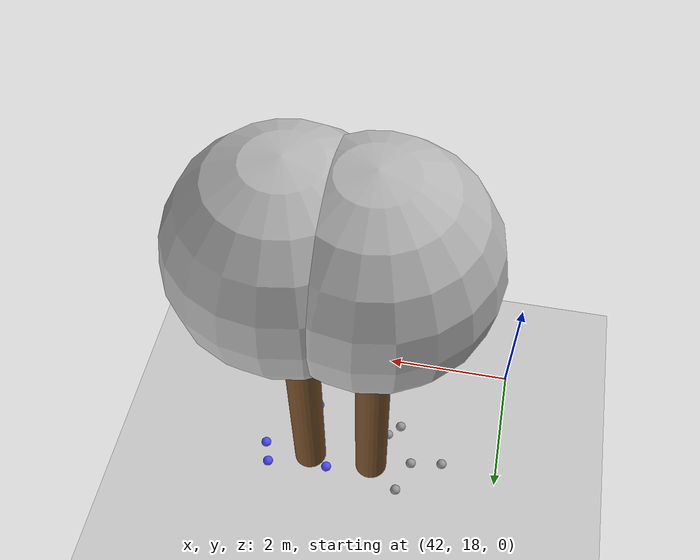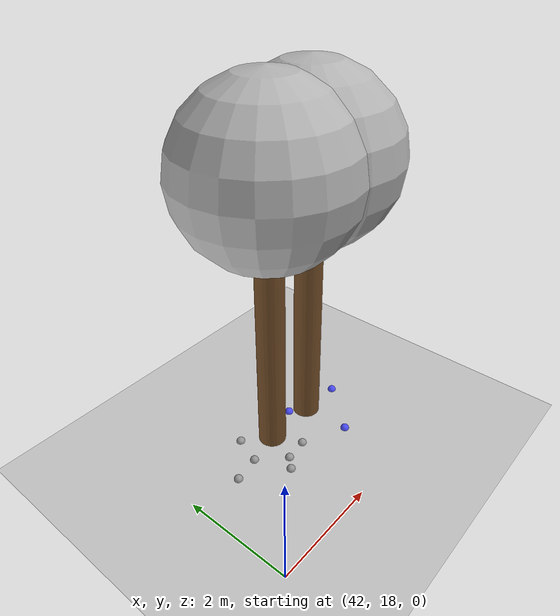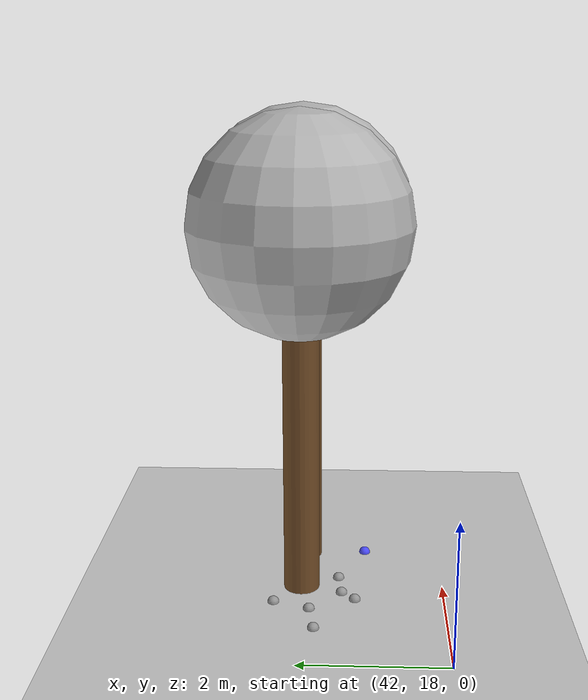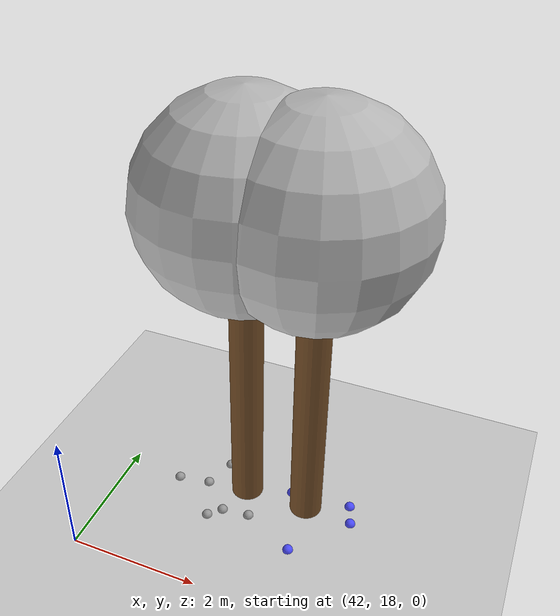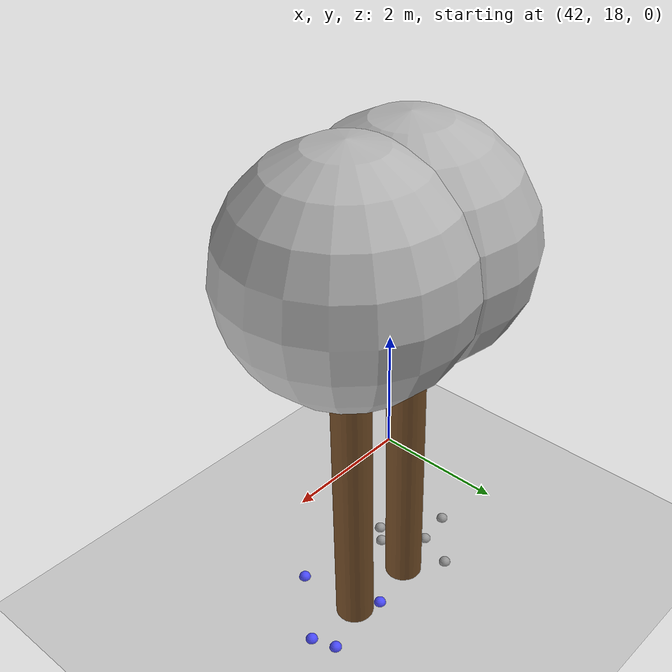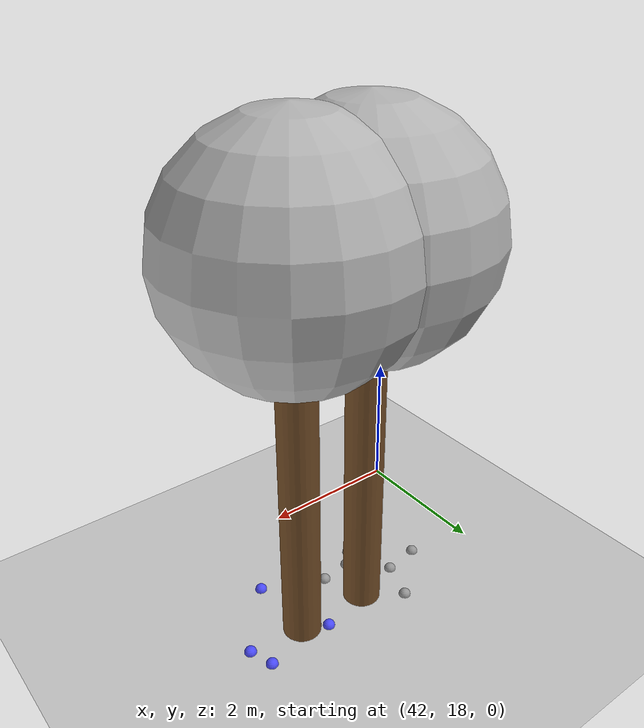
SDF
<sdf version="1.7">
 <world name="default">
  <model name="ground_plane">
   <static>1</static>
   <link name="link">
    <collision name="collision">
     <geometry><plane><normal>0 0 1</normal><size>100 100</size></plane></geometry>
     <surface>
      <contact><collide_bitmask>65535</collide_bitmask></contact>
      <friction><ode><mu>100</mu><mu2>50</mu2></ode></friction>
     </surface>
    </collision>
    <visual name="visual">
     <cast_shadows>0</cast_shadows>
     <geometry><plane><normal>0 0 1</normal><size>100 100</size></plane></geometry>
     <material>
      <script><uri>file://media/materials/scripts/gazebo.material</uri><name>Gazebo/Grey</name></script>
     </material>
    </visual>
   </link>
  </model>
  <model name="tree_simple_49">
   <static>1</static>
   <link name="link">
    <pose>0 0 0.1 0 -0 0</pose>
    <inertial>
     <mass>666</mass>
     <inertia>
      <ixx>0.0861167</ixx>
      <ixy>0</ixy>
      <ixz>0</ixz>
      <iyy>0.0861167</iyy>
      <iyz>0</iyz>
      <izz>0.0861167</izz>
     </inertia>
    </inertial>
    <collision name="collision_trunk">
     <pose>0 0 2 0 -0 0</pose>
     <geometry><cylinder><radius>0.25</radius><length>4</length></cylinder></geometry>
     <surface>
      <contact>
       <poissons_ratio>0.347</poissons_ratio>
       <elastic_modulus>8.8e+09</elastic_modulus>
       <ode><kp>100000</kp><kd>100</kd><max_vel>100</max_vel><min_depth>0.001</min_depth></ode>
      </contact>
      <friction>
       <torsional>
        <coefficient>1</coefficient>
        <use_patch_radius>0</use_patch_radius>
        <surface_radius>0.01</surface_radius>
       </torsional>
      </friction>
     </surface>
    </collision>
    <collision name="collision_treetop">
     <pose>0 0 5.2 0 -0 0</pose>
     <geometry><sphere><radius>1.5</radius></sphere></geometry>
     <surface>
      <contact>
       <poissons_ratio>0.347</poissons_ratio>
       <elastic_modulus>8.8e+09</elastic_modulus>
       <ode><kp>100000</kp><kd>100</kd><max_vel>100</max_vel><min_depth>0.001</min_depth></ode>
      </contact>
      <friction>
       <torsional>
        <coefficient>1</coefficient>
        <use_patch_radius>0</use_patch_radius>
        <surface_radius>0.01</surface_radius>
       </torsional>
      </friction>
     </surface>
    </collision>
    <visual name="trunk">
     <pose>0 0 2 0 -0 0</pose>
     <geometry><cylinder><radius>0.25</radius><length>4</length></cylinder></geometry>
     <material>
      <script>
       <uri>model://tree_simple/scripts</uri>
       <uri>model://tree_simple/materials/textures</uri>
       <name>TreeSimple/Trunk</name>
      </script>
     </material>
    </visual>
    <visual name="treetop">
     <pose>0 0 5.2 0 -0 0</pose>
     <geometry><sphere><radius>1.5</radius></sphere></geometry>
     <material>
      <script>
       <uri>model://tree_simple/scripts</uri>
       <uri>model://tree_simple/materials/textures</uri>
       <name>TreeSimple/Treetop</name>
      </script>
     </material>
    </visual>
   </link>
   <pose>44 20 -0.1 0 -0 0</pose>
  </model>
  <model name="tree_simple_50">
   <static>1</static>
   <link name="link">
    <pose>0 0 0.1 0 -0 0</pose>
    <inertial>
     <mass>666</mass>
     <inertia>
      <ixx>0.0861167</ixx>
      <ixy>0</ixy>
      <ixz>0</ixz>
      <iyy>0.0861167</iyy>
      <iyz>0</iyz>
      <izz>0.0861167</izz>
     </inertia>
    </inertial>
    <collision name="collision_trunk">
     <pose>0 0 2 0 -0 0</pose>
     <geometry><cylinder><radius>0.25</radius><length>4</length></cylinder></geometry>
     <surface>
      <contact>
       <poissons_ratio>0.347</poissons_ratio>
       <elastic_modulus>8.8e+09</elastic_modulus>
       <ode><kp>100000</kp><kd>100</kd><max_vel>100</max_vel><min_depth>0.001</min_depth></ode>
      </contact>
      <friction>
       <torsional>
        <coefficient>1</coefficient>
        <use_patch_radius>0</use_patch_radius>
        <surface_radius>0.01</surface_radius>
       </torsional>
      </friction>
     </surface>
    </collision>
    <collision name="collision_treetop">
     <pose>0 0 5.2 0 -0 0</pose>
     <geometry><sphere><radius>1.5</radius></sphere></geometry>
     <surface>
      <contact>
       <poissons_ratio>0.347</poissons_ratio>
       <elastic_modulus>8.8e+09</elastic_modulus>
       <ode><kp>100000</kp><kd>100</kd><max_vel>100</max_vel><min_depth>0.001</min_depth></ode>
      </contact>
      <friction>
       <torsional>
        <coefficient>1</coefficient>
        <use_patch_radius>0</use_patch_radius>
        <surface_radius>0.01</surface_radius>
       </torsional>
      </friction>
     </surface>
    </collision>
    <visual name="trunk">
     <pose>0 0 2 0 -0 0</pose>
     <geometry><cylinder><radius>0.25</radius><length>4</length></cylinder></geometry>
     <material>
      <script>
       <uri>model://tree_simple/scripts</uri>
       <uri>model://tree_simple/materials/textures</uri>
       <name>TreeSimple/Trunk</name>
      </script>
     </material>
    </visual>
    <visual name="treetop">
     <pose>0 0 5.2 0 -0 0</pose>
     <geometry><sphere><radius>1.5</radius></sphere></geometry>
     <material>
      <script>
       <uri>model://tree_simple/scripts</uri>
       <uri>model://tree_simple/materials/textures</uri>
       <name>TreeSimple/Treetop</name>
      </script>
     </material>
    </visual>
   </link>
   <pose>45 20 -0.1 0 -0 0</pose>
  </model>
  <model name="seed_black_34">
   <link name="link">
    <inertial>
     <mass>1</mass>
     <inertia><ixx>0.1</ixx><ixy>0</ixy><ixz>0</ixz><iyy>0.1</iyy><iyz>0</iyz><izz>0.1</izz></inertia>
    </inertial>
    <visual name="visual">
     <geometry><sphere><radius>0.08</radius></sphere></geometry>
     <material>
      <script><name>Gazebo/Grey</name><uri>file://media/materials/scripts/gazebo.material</uri></script>
      <shader type="pixel"><normal_map>__default__</normal_map></shader>
      <ambient>0 0 0 1</ambient>
      <diffuse>0.7 0.7 0.7 1</diffuse>
      <specular>0.01 0.01 0.01 1</specular>
      <emissive>0 0 0 1</emissive>
     </material>
    </visual>
    <collision name="collision">
     <geometry><sphere><radius>0.0005</radius></sphere></geometry>
     <surface>
      <friction>
       <ode><mu>1</mu><mu2>1</mu2><fdir1>0 0 0</fdir1><slip1>0</slip1><slip2>0</slip2></ode>
       <torsional>
        <coefficient>1</coefficient>
        <patch_radius>0</patch_radius>
        <surface_radius>0</surface_radius>
        <use_patch_radius>1</use_patch_radius>
        <ode><slip>0</slip></ode>
       </torsional>
      </friction>
      <bounce><restitution_coefficient>0</restitution_coefficient><threshold>1e+06</threshold></bounce>
      <contact>
       <collide_without_contact>0</collide_without_contact>
       <collide_without_contact_bitmask>1</collide_without_contact_bitmask>
       <collide_bitmask>1</collide_bitmask>
       <ode>
        <soft_cfm>0</soft_cfm>
        <soft_erp>0.2</soft_erp>
        <kp>1e+13</kp>
        <kd>1</kd>
        <max_vel>0.01</max_vel>
        <min_depth>0</min_depth>
       </ode>
       <bullet>
        <split_impulse>1</split_impulse>
        <split_impulse_penetration_threshold>-0.01</split_impulse_penetration_threshold>
        <soft_cfm>0</soft_cfm>
        <soft_erp>0.2</soft_erp>
        <kp>1e+13</kp>
        <kd>1</kd>
       </bullet>
      </contact>
     </surface>
    </collision>
   </link>
   <static>0</static>
   <pose>43.5371 20.3753 0.0005 0 -0 0</pose>
  </model>
  <model name="seed_black_35">
   <link name="link">
    <inertial>
     <mass>1</mass>
     <inertia><ixx>0.1</ixx><ixy>0</ixy><ixz>0</ixz><iyy>0.1</iyy><iyz>0</iyz><izz>0.1</izz></inertia>
    </inertial>
    <visual name="visual">
     <geometry><sphere><radius>0.08</radius></sphere></geometry>
     <material>
      <script><name>Gazebo/Grey</name><uri>file://media/materials/scripts/gazebo.material</uri></script>
      <shader type="pixel"><normal_map>__default__</normal_map></shader>
      <ambient>0 0 0 1</ambient>
      <diffuse>0.7 0.7 0.7 1</diffuse>
      <specular>0.01 0.01 0.01 1</specular>
      <emissive>0 0 0 1</emissive>
     </material>
    </visual>
    <collision name="collision">
     <geometry><sphere><radius>0.0005</radius></sphere></geometry>
     <surface>
      <friction>
       <ode><mu>1</mu><mu2>1</mu2><fdir1>0 0 0</fdir1><slip1>0</slip1><slip2>0</slip2></ode>
       <torsional>
        <coefficient>1</coefficient>
        <patch_radius>0</patch_radius>
        <surface_radius>0</surface_radius>
        <use_patch_radius>1</use_patch_radius>
        <ode><slip>0</slip></ode>
       </torsional>
      </friction>
      <bounce><restitution_coefficient>0</restitution_coefficient><threshold>1e+06</threshold></bounce>
      <contact>
       <collide_without_contact>0</collide_without_contact>
       <collide_without_contact_bitmask>1</collide_without_contact_bitmask>
       <collide_bitmask>1</collide_bitmask>
       <ode>
        <soft_cfm>0</soft_cfm>
        <soft_erp>0.2</soft_erp>
        <kp>1e+13</kp>
        <kd>1</kd>
        <max_vel>0.01</max_vel>
        <min_depth>0</min_depth>
       </ode>
       <bullet>
        <split_impulse>1</split_impulse>
        <split_impulse_penetration_threshold>-0.01</split_impulse_penetration_threshold>
        <soft_cfm>0</soft_cfm>
        <soft_erp>0.2</soft_erp>
        <kp>1e+13</kp>
        <kd>1</kd>
       </bullet>
      </contact>
     </surface>
    </collision>
   </link>
   <static>0</static>
   <pose>43.3649 19.8737 0.0005 0 -0 0</pose>
  </model>
  <model name="seed_black_36">
   <link name="link">
    <inertial>
     <mass>1</mass>
     <inertia><ixx>0.1</ixx><ixy>0</ixy><ixz>0</ixz><iyy>0.1</iyy><iyz>0</iyz><izz>0.1</izz></inertia>
    </inertial>
    <visual name="visual">
     <geometry><sphere><radius>0.08</radius></sphere></geometry>
     <material>
      <script><name>Gazebo/Grey</name><uri>file://media/materials/scripts/gazebo.material</uri></script>
      <shader type="pixel"><normal_map>__default__</normal_map></shader>
      <ambient>0 0 0 1</ambient>
      <diffuse>0.7 0.7 0.7 1</diffuse>
      <specular>0.01 0.01 0.01 1</specular>
      <emissive>0 0 0 1</emissive>
     </material>
    </visual>
    <collision name="collision">
     <geometry><sphere><radius>0.0005</radius></sphere></geometry>
     <surface>
      <friction>
       <ode><mu>1</mu><mu2>1</mu2><fdir1>0 0 0</fdir1><slip1>0</slip1><slip2>0</slip2></ode>
       <torsional>
        <coefficient>1</coefficient>
        <patch_radius>0</patch_radius>
        <surface_radius>0</surface_radius>
        <use_patch_radius>1</use_patch_radius>
        <ode><slip>0</slip></ode>
       </torsional>
      </friction>
      <bounce><restitution_coefficient>0</restitution_coefficient><threshold>1e+06</threshold></bounce>
      <contact>
       <collide_without_contact>0</collide_without_contact>
       <collide_without_contact_bitmask>1</collide_without_contact_bitmask>
       <collide_bitmask>1</collide_bitmask>
       <ode>
        <soft_cfm>0</soft_cfm>
        <soft_erp>0.2</soft_erp>
        <kp>1e+13</kp>
        <kd>1</kd>
        <max_vel>0.01</max_vel>
        <min_depth>0</min_depth>
       </ode>
       <bullet>
        <split_impulse>1</split_impulse>
        <split_impulse_penetration_threshold>-0.01</split_impulse_penetration_threshold>
        <soft_cfm>0</soft_cfm>
        <soft_erp>0.2</soft_erp>
        <kp>1e+13</kp>
        <kd>1</kd>
       </bullet>
      </contact>
     </surface>
    </collision>
   </link>
   <static>0</static>
   <pose>43.8115 19.4305 0.0005 0 -0 0</pose>
  </model>
  <model name="seed_black_37">
   <link name="link">
    <inertial>
     <mass>1</mass>
     <inertia><ixx>0.1</ixx><ixy>0</ixy><ixz>0</ixz><iyy>0.1</iyy><iyz>0</iyz><izz>0.1</izz></inertia>
    </inertial>
    <visual name="visual">
     <geometry><sphere><radius>0.08</radius></sphere></geometry>
     <material>
      <script><name>Gazebo/Grey</name><uri>file://media/materials/scripts/gazebo.material</uri></script>
      <shader type="pixel"><normal_map>__default__</normal_map></shader>
      <ambient>0 0 0 1</ambient>
      <diffuse>0.7 0.7 0.7 1</diffuse>
      <specular>0.01 0.01 0.01 1</specular>
      <emissive>0 0 0 1</emissive>
     </material>
    </visual>
    <collision name="collision">
     <geometry><sphere><radius>0.0005</radius></sphere></geometry>
     <surface>
      <friction>
       <ode><mu>1</mu><mu2>1</mu2><fdir1>0 0 0</fdir1><slip1>0</slip1><slip2>0</slip2></ode>
       <torsional>
        <coefficient>1</coefficient>
        <patch_radius>0</patch_radius>
        <surface_radius>0</surface_radius>
        <use_patch_radius>1</use_patch_radius>
        <ode><slip>0</slip></ode>
       </torsional>
      </friction>
      <bounce><restitution_coefficient>0</restitution_coefficient><threshold>1e+06</threshold></bounce>
      <contact>
       <collide_without_contact>0</collide_without_contact>
       <collide_without_contact_bitmask>1</collide_without_contact_bitmask>
       <collide_bitmask>1</collide_bitmask>
       <ode>
        <soft_cfm>0</soft_cfm>
        <soft_erp>0.2</soft_erp>
        <kp>1e+13</kp>
        <kd>1</kd>
        <max_vel>0.01</max_vel>
        <min_depth>0</min_depth>
       </ode>
       <bullet>
        <split_impulse>1</split_impulse>
        <split_impulse_penetration_threshold>-0.01</split_impulse_penetration_threshold>
        <soft_cfm>0</soft_cfm>
        <soft_erp>0.2</soft_erp>
        <kp>1e+13</kp>
        <kd>1</kd>
       </bullet>
      </contact>
     </surface>
    </collision>
   </link>
   <static>0</static>
   <pose>43.6295 19.2441 0.0005 0 -0 0</pose>
  </model>
  <model name="seed_black_38">
   <link name="link">
    <inertial>
     <mass>1</mass>
     <inertia><ixx>0.1</ixx><ixy>0</ixy><ixz>0</ixz><iyy>0.1</iyy><iyz>0</iyz><izz>0.1</izz></inertia>
    </inertial>
    <visual name="visual">
     <geometry><sphere><radius>0.08</radius></sphere></geometry>
     <material>
      <script><name>Gazebo/Grey</name><uri>file://media/materials/scripts/gazebo.material</uri></script>
      <shader type="pixel"><normal_map>__default__</normal_map></shader>
      <ambient>0 0 0 1</ambient>
      <diffuse>0.7 0.7 0.7 1</diffuse>
      <specular>0.01 0.01 0.01 1</specular>
      <emissive>0 0 0 1</emissive>
     </material>
    </visual>
    <collision name="collision">
     <geometry><sphere><radius>0.0005</radius></sphere></geometry>
     <surface>
      <friction>
       <ode><mu>1</mu><mu2>1</mu2><fdir1>0 0 0</fdir1><slip1>0</slip1><slip2>0</slip2></ode>
       <torsional>
        <coefficient>1</coefficient>
        <patch_radius>0</patch_radius>
        <surface_radius>0</surface_radius>
        <use_patch_radius>1</use_patch_radius>
        <ode><slip>0</slip></ode>
       </torsional>
      </friction>
      <bounce><restitution_coefficient>0</restitution_coefficient><threshold>1e+06</threshold></bounce>
      <contact>
       <collide_without_contact>0</collide_without_contact>
       <collide_without_contact_bitmask>1</collide_without_contact_bitmask>
       <collide_bitmask>1</collide_bitmask>
       <ode>
        <soft_cfm>0</soft_cfm>
        <soft_erp>0.2</soft_erp>
        <kp>1e+13</kp>
        <kd>1</kd>
        <max_vel>0.01</max_vel>
        <min_depth>0</min_depth>
       </ode>
       <bullet>
        <split_impulse>1</split_impulse>
        <split_impulse_penetration_threshold>-0.01</split_impulse_penetration_threshold>
        <soft_cfm>0</soft_cfm>
        <soft_erp>0.2</soft_erp>
        <kp>1e+13</kp>
        <kd>1</kd>
       </bullet>
      </contact>
     </surface>
    </collision>
   </link>
   <static>0</static>
   <pose>42.8729 19.7957 0.0005 0 -0 0</pose>
  </model>
  <model name="seed_black_39">
   <link name="link">
    <inertial>
     <mass>1</mass>
     <inertia><ixx>0.1</ixx><ixy>0</ixy><ixz>0</ixz><iyy>0.1</iyy><iyz>0</iyz><izz>0.1</izz></inertia>
    </inertial>
    <visual name="visual">
     <geometry><sphere><radius>0.08</radius></sphere></geometry>
     <material>
      <script><name>Gazebo/Grey</name><uri>file://media/materials/scripts/gazebo.material</uri></script>
      <shader type="pixel"><normal_map>__default__</normal_map></shader>
      <ambient>0 0 0 1</ambient>
      <diffuse>0.7 0.7 0.7 1</diffuse>
      <specular>0.01 0.01 0.01 1</specular>
      <emissive>0 0 0 1</emissive>
     </material>
    </visual>
    <collision name="collision">
     <geometry><sphere><radius>0.0005</radius></sphere></geometry>
     <surface>
      <friction>
       <ode><mu>1</mu><mu2>1</mu2><fdir1>0 0 0</fdir1><slip1>0</slip1><slip2>0</slip2></ode>
       <torsional>
        <coefficient>1</coefficient>
        <patch_radius>0</patch_radius>
        <surface_radius>0</surface_radius>
        <use_patch_radius>1</use_patch_radius>
        <ode><slip>0</slip></ode>
       </torsional>
      </friction>
      <bounce><restitution_coefficient>0</restitution_coefficient><threshold>1e+06</threshold></bounce>
      <contact>
       <collide_without_contact>0</collide_without_contact>
       <collide_without_contact_bitmask>1</collide_without_contact_bitmask>
       <collide_bitmask>1</collide_bitmask>
       <ode>
        <soft_cfm>0</soft_cfm>
        <soft_erp>0.2</soft_erp>
        <kp>1e+13</kp>
        <kd>1</kd>
        <max_vel>0.01</max_vel>
        <min_depth>0</min_depth>
       </ode>
       <bullet>
        <split_impulse>1</split_impulse>
        <split_impulse_penetration_threshold>-0.01</split_impulse_penetration_threshold>
        <soft_cfm>0</soft_cfm>
        <soft_erp>0.2</soft_erp>
        <kp>1e+13</kp>
        <kd>1</kd>
       </bullet>
      </contact>
     </surface>
    </collision>
   </link>
   <static>0</static>
   <pose>44.234 19.4779 0.0005 0 -0 0</pose>
  </model>
  <model name="seed_blue_90">
   <link name="link">
    <inertial>
     <mass>1</mass>
     <inertia><ixx>0.1</ixx><ixy>0</ixy><ixz>0</ixz><iyy>0.1</iyy><iyz>0</iyz><izz>0.1</izz></inertia>
    </inertial>
    <visual name="visual">
     <geometry><sphere><radius>0.08</radius></sphere></geometry>
     <material>
      <script><name>Gazebo/Grey</name><uri>file://media/materials/scripts/gazebo.material</uri></script>
      <shader type="pixel"><normal_map>__default__</normal_map></shader>
      <ambient>0.3 0.3 1 1</ambient>
      <diffuse>0.7 0.7 0.7 1</diffuse>
      <specular>0.01 0.01 0.01 1</specular>
      <emissive>0 0 0 1</emissive>
     </material>
    </visual>
    <collision name="collision">
     <geometry><sphere><radius>0.0005</radius></sphere></geometry>
     <surface>
      <friction>
       <ode><mu>1</mu><mu2>1</mu2><fdir1>0 0 0</fdir1><slip1>0</slip1><slip2>0</slip2></ode>
       <torsional>
        <coefficient>1</coefficient>
        <patch_radius>0</patch_radius>
        <surface_radius>0</surface_radius>
        <use_patch_radius>1</use_patch_radius>
        <ode><slip>0</slip></ode>
       </torsional>
      </friction>
      <bounce><restitution_coefficient>0</restitution_coefficient><threshold>1e+06</threshold></bounce>
      <contact>
       <collide_without_contact>0</collide_without_contact>
       <collide_without_contact_bitmask>1</collide_without_contact_bitmask>
       <collide_bitmask>1</collide_bitmask>
       <ode>
        <soft_cfm>0</soft_cfm>
        <soft_erp>0.2</soft_erp>
        <kp>1e+13</kp>
        <kd>1</kd>
        <max_vel>0.01</max_vel>
        <min_depth>0</min_depth>
       </ode>
       <bullet>
        <split_impulse>1</split_impulse>
        <split_impulse_penetration_threshold>-0.01</split_impulse_penetration_threshold>
        <soft_cfm>0</soft_cfm>
        <soft_erp>0.2</soft_erp>
        <kp>1e+13</kp>
        <kd>1</kd>
       </bullet>
      </contact>
     </surface>
    </collision>
   </link>
   <static>0</static>
   <pose>45.6527 20.2599 0.0005 0 -0 0</pose>
  </model>
  <model name="seed_blue_91">
   <link name="link">
    <inertial>
     <mass>1</mass>
     <inertia><ixx>0.1</ixx><ixy>0</ixy><ixz>0</ixz><iyy>0.1</iyy><iyz>0</iyz><izz>0.1</izz></inertia>
    </inertial>
    <visual name="visual">
     <geometry><sphere><radius>0.08</radius></sphere></geometry>
     <material>
      <script><name>Gazebo/Grey</name><uri>file://media/materials/scripts/gazebo.material</uri></script>
      <shader type="pixel"><normal_map>__default__</normal_map></shader>
      <ambient>0.3 0.3 1 1</ambient>
      <diffuse>0.7 0.7 0.7 1</diffuse>
      <specular>0.01 0.01 0.01 1</specular>
      <emissive>0 0 0 1</emissive>
     </material>
    </visual>
    <collision name="collision">
     <geometry><sphere><radius>0.0005</radius></sphere></geometry>
     <surface>
      <friction>
       <ode><mu>1</mu><mu2>1</mu2><fdir1>0 0 0</fdir1><slip1>0</slip1><slip2>0</slip2></ode>
       <torsional>
        <coefficient>1</coefficient>
        <patch_radius>0</patch_radius>
        <surface_radius>0</surface_radius>
        <use_patch_radius>1</use_patch_radius>
        <ode><slip>0</slip></ode>
       </torsional>
      </friction>
      <bounce><restitution_coefficient>0</restitution_coefficient><threshold>1e+06</threshold></bounce>
      <contact>
       <collide_without_contact>0</collide_without_contact>
       <collide_without_contact_bitmask>1</collide_without_contact_bitmask>
       <collide_bitmask>1</collide_bitmask>
       <ode>
        <soft_cfm>0</soft_cfm>
        <soft_erp>0.2</soft_erp>
        <kp>1e+13</kp>
        <kd>1</kd>
        <max_vel>0.01</max_vel>
        <min_depth>0</min_depth>
       </ode>
       <bullet>
        <split_impulse>1</split_impulse>
        <split_impulse_penetration_threshold>-0.01</split_impulse_penetration_threshold>
        <soft_cfm>0</soft_cfm>
        <soft_erp>0.2</soft_erp>
        <kp>1e+13</kp>
        <kd>1</kd>
       </bullet>
      </contact>
     </surface>
    </collision>
   </link>
   <static>0</static>
   <pose>44.7028 20.1864 0.0005 0 -0 0</pose>
  </model>
  <model name="seed_blue_92">
   <link name="link">
    <inertial>
     <mass>1</mass>
     <inertia><ixx>0.1</ixx><ixy>0</ixy><ixz>0</ixz><iyy>0.1</iyy><iyz>0</iyz><izz>0.1</izz></inertia>
    </inertial>
    <visual name="visual">
     <geometry><sphere><radius>0.08</radius></sphere></geometry>
     <material>
      <script><name>Gazebo/Grey</name><uri>file://media/materials/scripts/gazebo.material</uri></script>
      <shader type="pixel"><normal_map>__default__</normal_map></shader>
      <ambient>0.3 0.3 1 1</ambient>
      <diffuse>0.7 0.7 0.7 1</diffuse>
      <specular>0.01 0.01 0.01 1</specular>
      <emissive>0 0 0 1</emissive>
     </material>
    </visual>
    <collision name="collision">
     <geometry><sphere><radius>0.0005</radius></sphere></geometry>
     <surface>
      <friction>
       <ode><mu>1</mu><mu2>1</mu2><fdir1>0 0 0</fdir1><slip1>0</slip1><slip2>0</slip2></ode>
       <torsional>
        <coefficient>1</coefficient>
        <patch_radius>0</patch_radius>
        <surface_radius>0</surface_radius>
        <use_patch_radius>1</use_patch_radius>
        <ode><slip>0</slip></ode>
       </torsional>
      </friction>
      <bounce><restitution_coefficient>0</restitution_coefficient><threshold>1e+06</threshold></bounce>
      <contact>
       <collide_without_contact>0</collide_without_contact>
       <collide_without_contact_bitmask>1</collide_without_contact_bitmask>
       <collide_bitmask>1</collide_bitmask>
       <ode>
        <soft_cfm>0</soft_cfm>
        <soft_erp>0.2</soft_erp>
        <kp>1e+13</kp>
        <kd>1</kd>
        <max_vel>0.01</max_vel>
        <min_depth>0</min_depth>
       </ode>
       <bullet>
        <split_impulse>1</split_impulse>
        <split_impulse_penetration_threshold>-0.01</split_impulse_penetration_threshold>
        <soft_cfm>0</soft_cfm>
        <soft_erp>0.2</soft_erp>
        <kp>1e+13</kp>
        <kd>1</kd>
       </bullet>
      </contact>
     </surface>
    </collision>
   </link>
   <static>0</static>
   <pose>45.7616 19.9351 0.0005 0 -0 0</pose>
  </model>
  <model name="seed_blue_94">
   <link name="link">
    <inertial>
     <mass>1</mass>
     <inertia><ixx>0.1</ixx><ixy>0</ixy><ixz>0</ixz><iyy>0.1</iyy><iyz>0</iyz><izz>0.1</izz></inertia>
    </inertial>
    <visual name="visual">
     <geometry><sphere><radius>0.08</radius></sphere></geometry>
     <material>
      <script><name>Gazebo/Grey</name><uri>file://media/materials/scripts/gazebo.material</uri></script>
      <shader type="pixel"><normal_map>__default__</normal_map></shader>
      <ambient>0.3 0.3 1 1</ambient>
      <diffuse>0.7 0.7 0.7 1</diffuse>
      <specular>0.01 0.01 0.01 1</specular>
      <emissive>0 0 0 1</emissive>
     </material>
    </visual>
    <collision name="collision">
     <geometry><sphere><radius>0.0005</radius></sphere></geometry>
     <surface>
      <friction>
       <ode><mu>1</mu><mu2>1</mu2><fdir1>0 0 0</fdir1><slip1>0</slip1><slip2>0</slip2></ode>
       <torsional>
        <coefficient>1</coefficient>
        <patch_radius>0</patch_radius>
        <surface_radius>0</surface_radius>
        <use_patch_radius>1</use_patch_radius>
        <ode><slip>0</slip></ode>
       </torsional>
      </friction>
      <bounce><restitution_coefficient>0</restitution_coefficient><threshold>1e+06</threshold></bounce>
      <contact>
       <collide_without_contact>0</collide_without_contact>
       <collide_without_contact_bitmask>1</collide_without_contact_bitmask>
       <collide_bitmask>1</collide_bitmask>
       <ode>
        <soft_cfm>0</soft_cfm>
        <soft_erp>0.2</soft_erp>
        <kp>1e+13</kp>
        <kd>1</kd>
        <max_vel>0.01</max_vel>
        <min_depth>0</min_depth>
       </ode>
       <bullet>
        <split_impulse>1</split_impulse>
        <split_impulse_penetration_threshold>-0.01</split_impulse_penetration_threshold>
        <soft_cfm>0</soft_cfm>
        <soft_erp>0.2</soft_erp>
        <kp>1e+13</kp>
        <kd>1</kd>
       </bullet>
      </contact>
     </surface>
    </collision>
   </link>
   <static>0</static>
   <pose>45.0447 19.0954 0.0005 0 -0 0</pose>
  </model>
 </world>
</sdf>
